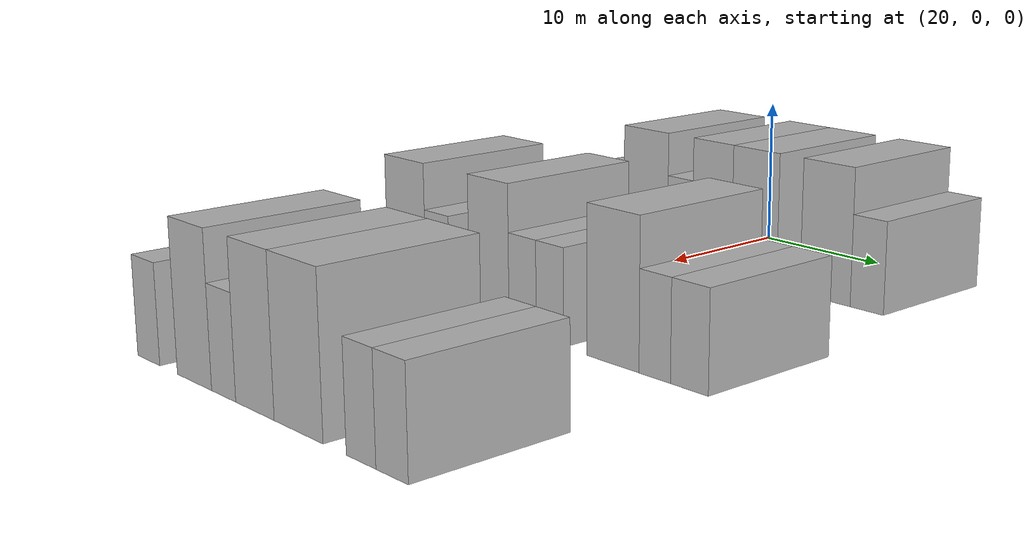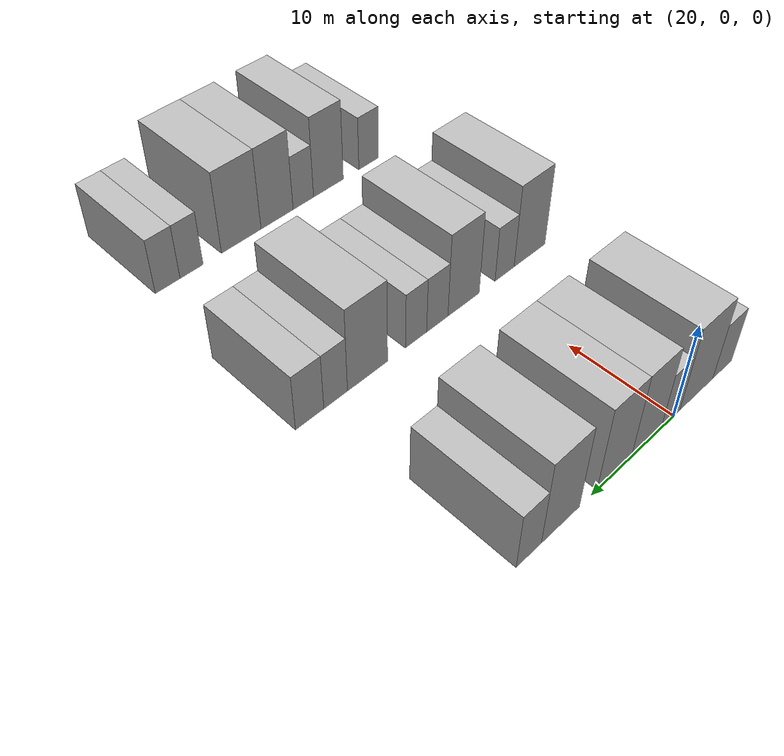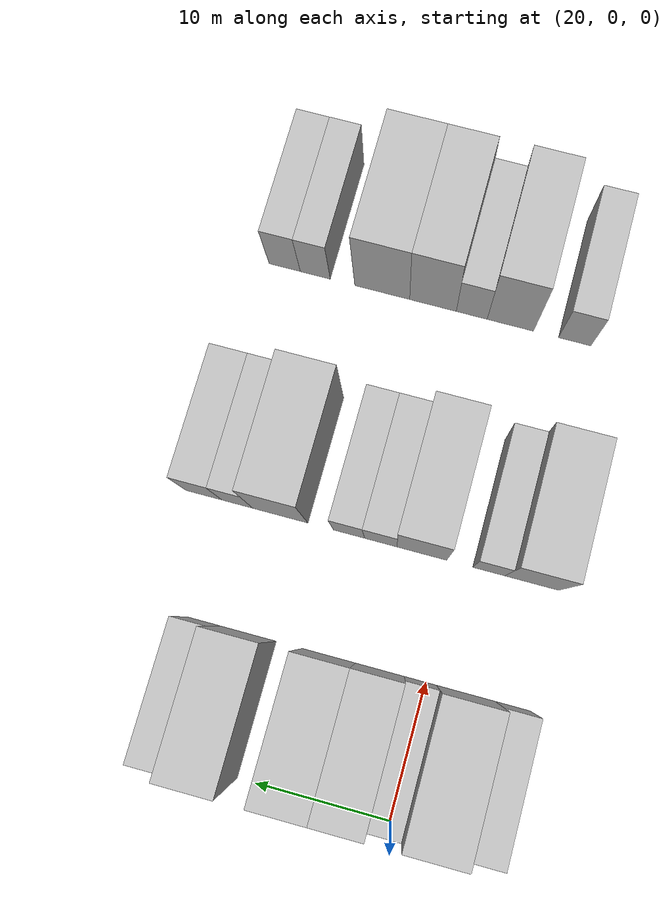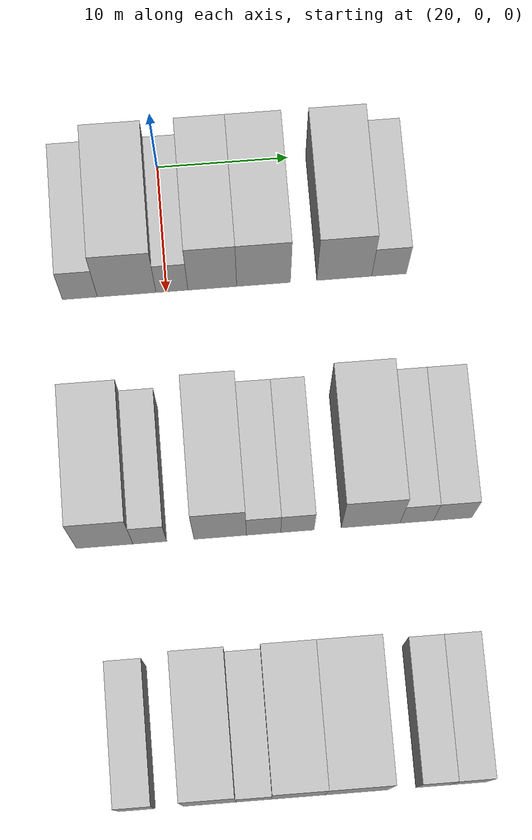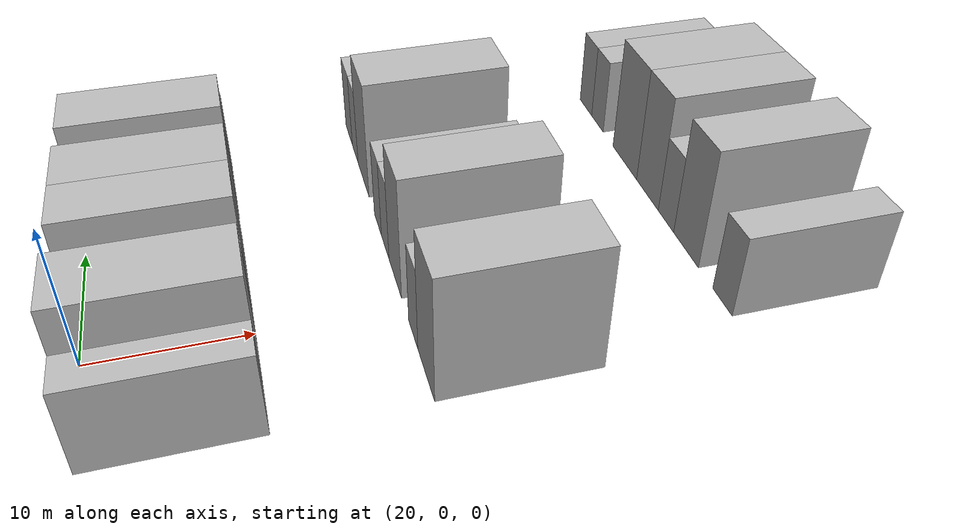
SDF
<sdf version="1.6">
 <world name="default">
  <model name="building_62">
   <static>1</static>
   <pose>25.0000 -6.4942 0 0.000000 0.000000 0.000000</pose>
   <link name="link">
    <pose>0 0 3.00 0 0 0</pose>
    <collision name="collision"><geometry><box><size>10.0000 2.6217 6.0000</size></box></geometry></collision>
    <visual name="visual">
     <cast_shadows>0</cast_shadows>
     <geometry><box><size>10.0000 2.6217 6.0000</size></box></geometry>
     <material>
      <script>
       <uri>model://HANNAS_wall/materials/scripts</uri>
       <uri>model://HANNAS_wall/materials/textures</uri>
       <name>vrc/HANNAS_wall</name>
      </script>
     </material>
    </visual>
   </link>
  </model>
  <model name="building_63">
   <static>1</static>
   <pose>25.0000 -2.9766 0 0.000000 0.000000 0.000000</pose>
   <link name="link">
    <pose>0 0 4.50 0 0 0</pose>
    <collision name="collision"><geometry><box><size>10.0000 4.4134 9.0000</size></box></geometry></collision>
    <visual name="visual">
     <cast_shadows>0</cast_shadows>
     <geometry><box><size>10.0000 4.4134 9.0000</size></box></geometry>
     <material>
      <script>
       <uri>model://HANNAS_wall/materials/scripts</uri>
       <uri>model://HANNAS_wall/materials/textures</uri>
       <name>vrc/HANNAS_wall</name>
      </script>
     </material>
    </visual>
   </link>
  </model>
  <model name="building_64">
   <static>1</static>
   <pose>25.0000 0.4351 0 0.000000 0.000000 0.000000</pose>
   <link name="link">
    <pose>0 0 3.00 0 0 0</pose>
    <collision name="collision"><geometry><box><size>10.0000 2.4101 6.0000</size></box></geometry></collision>
    <visual name="visual">
     <cast_shadows>0</cast_shadows>
     <geometry><box><size>10.0000 2.4101 6.0000</size></box></geometry>
     <material>
      <script>
       <uri>model://HANNAS_wall/materials/scripts</uri>
       <uri>model://HANNAS_wall/materials/textures</uri>
       <name>vrc/HANNAS_wall</name>
      </script>
     </material>
    </visual>
   </link>
  </model>
  <model name="building_65">
   <static>1</static>
   <pose>25.0000 3.4780 0 0.000000 0.000000 0.000000</pose>
   <link name="link">
    <pose>0 0 4.50 0 0 0</pose>
    <collision name="collision"><geometry><box><size>10.0000 3.6757 9.0000</size></box></geometry></collision>
    <visual name="visual">
     <cast_shadows>0</cast_shadows>
     <geometry><box><size>10.0000 3.6757 9.0000</size></box></geometry>
     <material>
      <script>
       <uri>model://HANNAS_wall/materials/scripts</uri>
       <uri>model://HANNAS_wall/materials/textures</uri>
       <name>vrc/HANNAS_wall</name>
      </script>
     </material>
    </visual>
   </link>
  </model>
  <model name="building_66">
   <static>1</static>
   <pose>25.0000 7.3419 0 0.000000 0.000000 0.000000</pose>
   <link name="link">
    <pose>0 0 4.50 0 0 0</pose>
    <collision name="collision"><geometry><box><size>10.0000 4.0522 9.0000</size></box></geometry></collision>
    <visual name="visual">
     <cast_shadows>0</cast_shadows>
     <geometry><box><size>10.0000 4.0522 9.0000</size></box></geometry>
     <material>
      <script>
       <uri>model://HANNAS_wall/materials/scripts</uri>
       <uri>model://HANNAS_wall/materials/textures</uri>
       <name>vrc/HANNAS_wall</name>
      </script>
     </material>
    </visual>
   </link>
  </model>
  <model name="building_67">
   <static>1</static>
   <pose>25.0000 13.4419 0 0.000000 0.000000 0.000000</pose>
   <link name="link">
    <pose>0 0 4.50 0 0 0</pose>
    <collision name="collision"><geometry><box><size>10.0000 4.1477 9.0000</size></box></geometry></collision>
    <visual name="visual">
     <cast_shadows>0</cast_shadows>
     <geometry><box><size>10.0000 4.1477 9.0000</size></box></geometry>
     <material>
      <script>
       <uri>model://HANNAS_wall/materials/scripts</uri>
       <uri>model://HANNAS_wall/materials/textures</uri>
       <name>vrc/HANNAS_wall</name>
      </script>
     </material>
    </visual>
   </link>
  </model>
  <model name="building_68">
   <static>1</static>
   <pose>25.0000 16.8241 0 0.000000 0.000000 0.000000</pose>
   <link name="link">
    <pose>0 0 3.00 0 0 0</pose>
    <collision name="collision"><geometry><box><size>10.0000 2.6167 6.0000</size></box></geometry></collision>
    <visual name="visual">
     <cast_shadows>0</cast_shadows>
     <geometry><box><size>10.0000 2.6167 6.0000</size></box></geometry>
     <material>
      <script>
       <uri>model://HANNAS_wall/materials/scripts</uri>
       <uri>model://HANNAS_wall/materials/textures</uri>
       <name>vrc/HANNAS_wall</name>
      </script>
     </material>
    </visual>
   </link>
  </model>
  <model name="building_180">
   <static>1</static>
   <pose>44.0000 -5.7578 0 0.000000 0.000000 0.000000</pose>
   <link name="link">
    <pose>0 0 4.50 0 0 0</pose>
    <collision name="collision"><geometry><box><size>10.0000 4.1202 9.0000</size></box></geometry></collision>
    <visual name="visual">
     <cast_shadows>0</cast_shadows>
     <geometry><box><size>10.0000 4.1202 9.0000</size></box></geometry>
     <material>
      <script>
       <uri>model://HANNAS_wall/materials/scripts</uri>
       <uri>model://HANNAS_wall/materials/textures</uri>
       <name>vrc/HANNAS_wall</name>
      </script>
     </material>
    </visual>
   </link>
  </model>
  <model name="building_181">
   <static>1</static>
   <pose>44.0000 -2.4677 0 0.000000 0.000000 0.000000</pose>
   <link name="link">
    <pose>0 0 3.00 0 0 0</pose>
    <collision name="collision"><geometry><box><size>10.0000 2.4599 6.0000</size></box></geometry></collision>
    <visual name="visual">
     <cast_shadows>0</cast_shadows>
     <geometry><box><size>10.0000 2.4599 6.0000</size></box></geometry>
     <material>
      <script>
       <uri>model://HANNAS_wall/materials/scripts</uri>
       <uri>model://HANNAS_wall/materials/textures</uri>
       <name>vrc/HANNAS_wall</name>
      </script>
     </material>
    </visual>
   </link>
  </model>
  <model name="building_182">
   <static>1</static>
   <pose>44.0000 2.6746 0 0.000000 0.000000 0.000000</pose>
   <link name="link">
    <pose>0 0 4.50 0 0 0</pose>
    <collision name="collision"><geometry><box><size>10.0000 3.8248 9.0000</size></box></geometry></collision>
    <visual name="visual">
     <cast_shadows>0</cast_shadows>
     <geometry><box><size>10.0000 3.8248 9.0000</size></box></geometry>
     <material>
      <script>
       <uri>model://HANNAS_wall/materials/scripts</uri>
       <uri>model://HANNAS_wall/materials/textures</uri>
       <name>vrc/HANNAS_wall</name>
      </script>
     </material>
    </visual>
   </link>
  </model>
  <model name="building_183">
   <static>1</static>
   <pose>44.0000 5.8432 0 0.000000 0.000000 0.000000</pose>
   <link name="link">
    <pose>0 0 3.00 0 0 0</pose>
    <collision name="collision"><geometry><box><size>10.0000 2.5123 6.0000</size></box></geometry></collision>
    <visual name="visual">
     <cast_shadows>0</cast_shadows>
     <geometry><box><size>10.0000 2.5123 6.0000</size></box></geometry>
     <material>
      <script>
       <uri>model://HANNAS_wall/materials/scripts</uri>
       <uri>model://HANNAS_wall/materials/textures</uri>
       <name>vrc/HANNAS_wall</name>
      </script>
     </material>
    </visual>
   </link>
  </model>
  <model name="building_184">
   <static>1</static>
   <pose>44.0000 8.3111 0 0.000000 0.000000 0.000000</pose>
   <link name="link">
    <pose>0 0 3.00 0 0 0</pose>
    <collision name="collision"><geometry><box><size>10.0000 2.4236 6.0000</size></box></geometry></collision>
    <visual name="visual">
     <cast_shadows>0</cast_shadows>
     <geometry><box><size>10.0000 2.4236 6.0000</size></box></geometry>
     <material>
      <script>
       <uri>model://HANNAS_wall/materials/scripts</uri>
       <uri>model://HANNAS_wall/materials/textures</uri>
       <name>vrc/HANNAS_wall</name>
      </script>
     </material>
    </visual>
   </link>
  </model>
  <model name="building_185">
   <static>1</static>
   <pose>44.0000 13.6751 0 0.000000 0.000000 0.000000</pose>
   <link name="link">
    <pose>0 0 4.50 0 0 0</pose>
    <collision name="collision"><geometry><box><size>10.0000 4.3044 9.0000</size></box></geometry></collision>
    <visual name="visual">
     <cast_shadows>0</cast_shadows>
     <geometry><box><size>10.0000 4.3044 9.0000</size></box></geometry>
     <material>
      <script>
       <uri>model://HANNAS_wall/materials/scripts</uri>
       <uri>model://HANNAS_wall/materials/textures</uri>
       <name>vrc/HANNAS_wall</name>
      </script>
     </material>
    </visual>
   </link>
  </model>
  <model name="building_186">
   <static>1</static>
   <pose>44.0000 17.0496 0 0.000000 0.000000 0.000000</pose>
   <link name="link">
    <pose>0 0 3.00 0 0 0</pose>
    <collision name="collision"><geometry><box><size>10.0000 2.4447 6.0000</size></box></geometry></collision>
    <visual name="visual">
     <cast_shadows>0</cast_shadows>
     <geometry><box><size>10.0000 2.4447 6.0000</size></box></geometry>
     <material>
      <script>
       <uri>model://HANNAS_wall/materials/scripts</uri>
       <uri>model://HANNAS_wall/materials/textures</uri>
       <name>vrc/HANNAS_wall</name>
      </script>
     </material>
    </visual>
   </link>
  </model>
  <model name="building_187">
   <static>1</static>
   <pose>44.0000 19.6888 0 0.000000 0.000000 0.000000</pose>
   <link name="link">
    <pose>0 0 3.00 0 0 0</pose>
    <collision name="collision"><geometry><box><size>10.0000 2.8337 6.0000</size></box></geometry></collision>
    <visual name="visual">
     <cast_shadows>0</cast_shadows>
     <geometry><box><size>10.0000 2.8337 6.0000</size></box></geometry>
     <material>
      <script>
       <uri>model://HANNAS_wall/materials/scripts</uri>
       <uri>model://HANNAS_wall/materials/textures</uri>
       <name>vrc/HANNAS_wall</name>
      </script>
     </material>
    </visual>
   </link>
  </model>
  <model name="building_302">
   <static>1</static>
   <pose>63.0000 -4.6008 0 0.000000 0.000000 0.000000</pose>
   <link name="link">
    <pose>0 0 3.00 0 0 0</pose>
    <collision name="collision"><geometry><box><size>10.0000 2.5830 6.0000</size></box></geometry></collision>
    <visual name="visual">
     <cast_shadows>0</cast_shadows>
     <geometry><box><size>10.0000 2.5830 6.0000</size></box></geometry>
     <material>
      <script>
       <uri>model://HANNAS_wall/materials/scripts</uri>
       <uri>model://HANNAS_wall/materials/textures</uri>
       <name>vrc/HANNAS_wall</name>
      </script>
     </material>
    </visual>
   </link>
  </model>
  <model name="building_303">
   <static>1</static>
   <pose>63.0000 0.5514 0 0.000000 0.000000 0.000000</pose>
   <link name="link">
    <pose>0 0 4.50 0 0 0</pose>
    <collision name="collision"><geometry><box><size>10.0000 3.7215 9.0000</size></box></geometry></collision>
    <visual name="visual">
     <cast_shadows>0</cast_shadows>
     <geometry><box><size>10.0000 3.7215 9.0000</size></box></geometry>
     <material>
      <script>
       <uri>model://HANNAS_wall/materials/scripts</uri>
       <uri>model://HANNAS_wall/materials/textures</uri>
       <name>vrc/HANNAS_wall</name>
      </script>
     </material>
    </visual>
   </link>
  </model>
  <model name="building_304">
   <static>1</static>
   <pose>63.0000 3.6553 0 0.000000 0.000000 0.000000</pose>
   <link name="link">
    <pose>0 0 3.00 0 0 0</pose>
    <collision name="collision"><geometry><box><size>10.0000 2.4863 6.0000</size></box></geometry></collision>
    <visual name="visual">
     <cast_shadows>0</cast_shadows>
     <geometry><box><size>10.0000 2.4863 6.0000</size></box></geometry>
     <material>
      <script>
       <uri>model://HANNAS_wall/materials/scripts</uri>
       <uri>model://HANNAS_wall/materials/textures</uri>
       <name>vrc/HANNAS_wall</name>
      </script>
     </material>
    </visual>
   </link>
  </model>
  <model name="building_305">
   <static>1</static>
   <pose>63.0000 6.7823 0 0.000000 0.000000 0.000000</pose>
   <link name="link">
    <pose>0 0 4.50 0 0 0</pose>
    <collision name="collision"><geometry><box><size>10.0000 3.7676 9.0000</size></box></geometry></collision>
    <visual name="visual">
     <cast_shadows>0</cast_shadows>
     <geometry><box><size>10.0000 3.7676 9.0000</size></box></geometry>
     <material>
      <script>
       <uri>model://HANNAS_wall/materials/scripts</uri>
       <uri>model://HANNAS_wall/materials/textures</uri>
       <name>vrc/HANNAS_wall</name>
      </script>
     </material>
    </visual>
   </link>
  </model>
  <model name="building_306">
   <static>1</static>
   <pose>63.0000 10.8951 0 0.000000 0.000000 0.000000</pose>
   <link name="link">
    <pose>0 0 4.50 0 0 0</pose>
    <collision name="collision"><geometry><box><size>10.0000 4.4582 9.0000</size></box></geometry></collision>
    <visual name="visual">
     <cast_shadows>0</cast_shadows>
     <geometry><box><size>10.0000 4.4582 9.0000</size></box></geometry>
     <material>
      <script>
       <uri>model://HANNAS_wall/materials/scripts</uri>
       <uri>model://HANNAS_wall/materials/textures</uri>
       <name>vrc/HANNAS_wall</name>
      </script>
     </material>
    </visual>
   </link>
  </model>
  <model name="building_307">
   <static>1</static>
   <pose>63.0000 16.3480 0 0.000000 0.000000 0.000000</pose>
   <link name="link">
    <pose>0 0 3.00 0 0 0</pose>
    <collision name="collision"><geometry><box><size>10.0000 2.4475 6.0000</size></box></geometry></collision>
    <visual name="visual">
     <cast_shadows>0</cast_shadows>
     <geometry><box><size>10.0000 2.4475 6.0000</size></box></geometry>
     <material>
      <script>
       <uri>model://HANNAS_wall/materials/scripts</uri>
       <uri>model://HANNAS_wall/materials/textures</uri>
       <name>vrc/HANNAS_wall</name>
      </script>
     </material>
    </visual>
   </link>
  </model>
  <model name="building_308">
   <static>1</static>
   <pose>63.0000 18.8519 0 0.000000 0.000000 0.000000</pose>
   <link name="link">
    <pose>0 0 3.00 0 0 0</pose>
    <collision name="collision"><geometry><box><size>10.0000 2.5604 6.0000</size></box></geometry></collision>
    <visual name="visual">
     <cast_shadows>0</cast_shadows>
     <geometry><box><size>10.0000 2.5604 6.0000</size></box></geometry>
     <material>
      <script>
       <uri>model://HANNAS_wall/materials/scripts</uri>
       <uri>model://HANNAS_wall/materials/textures</uri>
       <name>vrc/HANNAS_wall</name>
      </script>
     </material>
    </visual>
   </link>
  </model>
 </world>
</sdf>
